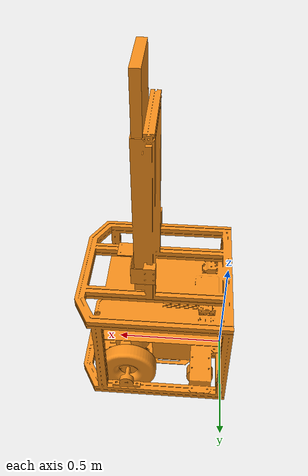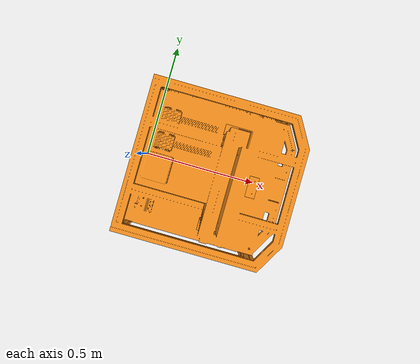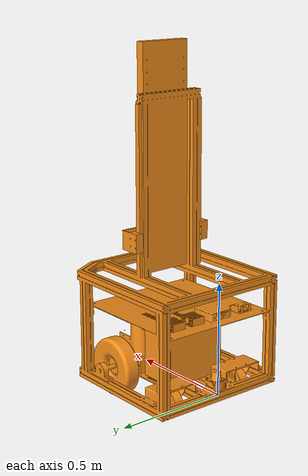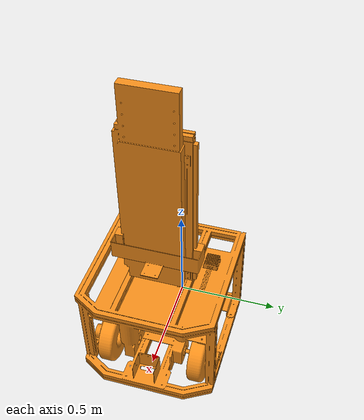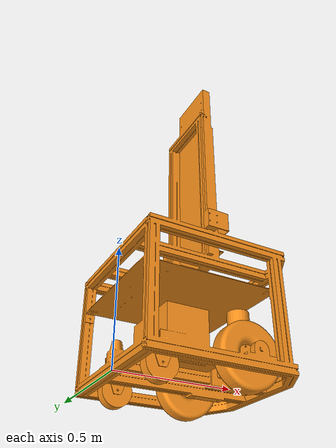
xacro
<robot name="OPTIMUS_robot_001" xmlns:xacro="http://www.ros.org/wiki/xacro">

    <xacro:property name="deg_to_rad" value="0.01745329251994329577"/>

    <link name="base_footprint"/>
    <joint name="base_footprint_joint" type="fixed">
        <parent link="base_footprint"/>
        <child link="base_link"/>
        <origin xyz="0.00 0.00 0" rpy="0.0 0.0 0.0"/>
    </joint>

    <!-- Base Link -->
    <link name="base_link">
        <collision>
            <origin xyz="0 0 0" rpy="0 0 0"/>
            <geometry>
                <mesh filename="package://infi_sim_v1/models/OPTIMUS_robot_001/meshes/base_link_collision_101.stl" scale="1 1 1"/>
            </geometry>
        </collision>
        <visual>
            <origin xyz="0 0 0" rpy="0 0 0"/>
            <geometry>
                <mesh filename="package://infi_sim_v1/models/OPTIMUS_robot_001/meshes/base_link.STL" scale="1 1 1"/>
            </geometry>
            <material name="orange"/>
        </visual>
        <inertial>
            <origin xyz="0.3 0 0.2" rpy="0 0 0"/>
            <mass value="80"/>
            <inertia
                    ixx="14.480" ixy="0" ixz="0.0"
                    iyy="14.672" iyz="0.0"
                    izz="3.480"/>
        </inertial>
    </link>
    <gazebo reference="base_link">
        <mu1>0.1</mu1>
        <mu2>0.1</mu2>
        <kp>500000.0</kp>
        <kd>10.0</kd>
        <minDepth>0.001</minDepth>
        <maxVel>0.1</maxVel>
        <fdir1>1 0 0</fdir1>
        <material>Gazebo/FlatBlack</material>
    </gazebo>

    <!-- Wheels -->
    <joint name="j_whFR" type="continuous">
        <parent link="base_link"/>
        <child link="whFR"/>
        <origin xyz="0.4315 -0.185 0.0533" rpy="0 0 0"/>
        <axis xyz="0 1 0"/>
    </joint>
    <link name="whFR">
        <collision>
            <origin xyz="0 -0.0375 0" rpy="1.5707963267948966 0 0"/>
            <geometry>
                <cylinder radius="0.13" length="0.075"/>

            </geometry>
        </collision>
        <visual>
            <origin xyz="0 0 0" rpy="0 0 -1.5707963267948966"/>
            <geometry>
                <mesh filename="package://infi_sim_v1/models/OPTIMUS_robot_001/meshes/wheel_front_left.STL" scale="1 1 1"/>
            </geometry>
            <material name="orange"/>
        </visual>

        <inertial>
            <origin xyz="0 0.0 0" rpy="0 0 0"/>
            <mass value="1.5"/>
            <inertia
                    ixx="0.007688273" ixy="0.0" ixz="0.0"
                    iyy="0.0140792" iyz="0.0"
                    izz="0.007688273"/>
        </inertial>
    </link>

    <joint name="j_whFL" type="continuous">
        <parent link="base_link"/>
        <child link="whFL"/>
        <origin xyz="0.4315 0.185 0.0533" rpy="0 0 0"/>
        <axis xyz="0 1 0"/>
    </joint>
    <link name="whFL">
        <collision>
            <origin xyz="0 0.0375 0" rpy=" 1.5707963267948966 0 0"/>
            <geometry>
                <cylinder radius="0.13" length="0.075"/>
                <mesh filename="package://infi_sim_v1/models/OPTIMUS_robot_001/meshes/wheel_front_left.STL" scale="1 1 1"/>
            </geometry>
        </collision>

        <visual>
            <origin xyz="0 0 0" rpy="0 0 1.5707963267948966"/>
            <geometry>
                <mesh filename="package://infi_sim_v1/models/OPTIMUS_robot_001/meshes/wheel_front_left.STL" scale="1 1 1"/>
            </geometry>
            <material name="orange"/>
        </visual>

        <inertial>
            <origin xyz="0 0.0 0" rpy="0 0 0"/>
            <mass value="1.5"/>
            <inertia
                    ixx="0.007688273" ixy="0.0" ixz="0.0"
                    iyy="0.0140792" iyz="0.0"
                    izz="0.007688273"/>
        </inertial>
    </link>

    <joint name="j_whRL" type="fixed">
        <parent link="base_link"/>
        <child link="whRL"/>
        <origin xyz="0.095 0.2075 -0.0173" rpy="0 0 0"/>
        <axis xyz="0 1 0"/>
    </joint>
    <link name="whRL">
        <collision>
            <origin xyz="0 0 0" rpy="1.5707963267948966 0 0"/>
            <geometry>
                <mesh filename="package://infi_sim_v1/models/OPTIMUS_robot_001/meshes/wheel_back_left.STL" scale="1 1 1"/>
            </geometry>
        </collision>
        <visual>
            <origin xyz="0 0 0" rpy="1.5707963267948966 0 0"/>
            <geometry>
                <mesh filename="package://infi_sim_v1/models/OPTIMUS_robot_001/meshes/wheel_back_left.STL" scale="1 1 1"/>
            </geometry>
            <material name="orange"/>
        </visual>

        <inertial>
            <origin xyz="0 -0.0215 0" rpy="0 0 0"/>
            <mass value="0.4"/>
            <inertia
                    ixx="0.0004538583" ixy="0.0" ixz="0.0"
                    iyy="0.00078445" iyz="0.0"
                    izz="0.0004538583"/>
        </inertial>
    </link>
    <gazebo reference="whRL">
        <mu1>0.0000001</mu1>
        <mu2>0.0000001</mu2>
        <kp>500000.0</kp>
        <kd>10.0</kd>
        <minDepth>0.001</minDepth>
        <maxVel>0.1</maxVel>
        <fdir1>1 0 0</fdir1>
        <material>Gazebo/Orange</material>
    </gazebo>

    <joint name="j_whRR" type="fixed">
        <parent link="base_link"/>
        <child link="whRR"/>
        <origin xyz="0.095 -0.2075 -0.0173" rpy="0 0 0"/>
        <axis xyz="0 1 0"/>
    </joint>
    <link name="whRR">
        <collision>
            <origin xyz="0 0 0" rpy="-1.5707963267948966 0 0"/>
            <geometry>
                <mesh filename="package://infi_sim_v1/models/OPTIMUS_robot_001/meshes/wheel_back_left.STL" scale="1 1 1"/>
            </geometry>
        </collision>
        <visual>
            <origin xyz="0 0 0" rpy="-1.5707963267948966 0 0"/>
            <geometry>
                <mesh filename="package://infi_sim_v1/models/OPTIMUS_robot_001/meshes/wheel_back_left.STL" scale="1 1 1"/>
            </geometry>
            <material name="orange"/>
        </visual>

        <inertial>
            <origin xyz="0 0.0215 0" rpy="0 0 0"/>
            <mass value="0.4"/>
            <inertia
                    ixx="0.0004538583" ixy="0.0" ixz="0.0"
                    iyy="0.00078445" iyz="0.0"
                    izz="0.0004538583"/>
        </inertial>
    </link>
    <gazebo reference="whRR">
        <mu1>0.0000001</mu1>
        <mu2>0.0000001</mu2>
        <kp>500000.0</kp>
        <kd>10.0</kd>
        <minDepth>0.001</minDepth>
        <maxVel>0.1</maxVel>
        <fdir1>1 0 0</fdir1>
        <material>Gazebo/Orange</material>
    </gazebo>

    <!-- Elevator -->
    <joint name="j_elev" type="fixed">
        <parent link="base_link"/>
        <child link="elevator"/>
        <origin xyz="0.4065 0 0.595" rpy="0 0 0"/>
        <axis xyz="0 0 1"/>
        <limit effort="30" velocity="1.0" lower="0" upper="0.7"/>

    </joint>
    <link name="elevator">
        <collision>
            <origin xyz="0 0 0" rpy="0 0 0"/>
            <geometry>
                <mesh filename="package://infi_sim_v1/models/OPTIMUS_robot_001/meshes/elevator_robotic_arm.STL" scale="1 1 1"/>
            </geometry>
        </collision>
        <visual>
            <origin xyz="0 0 0" rpy="0 0 0"/>
            <geometry>
                <mesh filename="package://infi_sim_v1/models/OPTIMUS_robot_001/meshes/elevator_robotic_arm.STL" scale="1 1 1"/>
            </geometry>
            <material name="orange"/>
        </visual>
        <inertial>
            <origin xyz="0 0 0" rpy="0 0 0"/>
            <mass value="1.5"/>
            <inertia
                    ixx="0.0302" ixy="0.0" ixz="0.0"
                    iyy="0.0027" iyz="0"
                    izz="0.0302"/>
        </inertial>
    </link>

    <!-- Sensors -->
    <joint name="j_ray_sensor_back" type="fixed">
        <parent link="base_link"/>
        <child link="ray_sensor_back"/>
        <origin xyz="0.0 0 -0.05" rpy="0 0 3.1415926"/>
        <axis xyz="0 0 1"/>
    </joint>
    <link name="ray_sensor_back">
        <inertial>
            <origin xyz="0 0 0" rpy="0 0 0"/>
            <mass value="0.0001"/>
            <inertia
                    ixx="1e-10" ixy="0.0" ixz="0.0"
                    iyy="1e-10" iyz="0"
                    izz="1e-10"/>
        </inertial>
    </link>
    <gazebo reference="ray_sensor_back">
        <sensor type="ray" name="ray_sensor_back">
            <always_on>true</always_on>
            <update_rate>100</update_rate>
            <pose>0 0 0 0 0 0</pose>
            <visualize>true</visualize>
            <ray>
                <scan>
                    <horizontal>
                        <samples>640</samples>
                        <resolution>1</resolution>
                        <min_angle>-1.6</min_angle>
                        <max_angle>1.6</max_angle>
                    </horizontal>
                </scan>
                <range>
                    <min>0.08</min>
                    <max>4.0</max>
                    <resolution>0.01</resolution>
                </range>
            </ray>
            <plugin name="gazebo_ros_laser_controller" filename="libgazebo_ros_laser.so">
                <gaussianNoise>0.00005</gaussianNoise>
                <alwaysOn>true</alwaysOn>
                <updateRate>50</updateRate>
                <topicName>/scan</topicName>
                <frameName>ray_sensor_back</frameName>
                <hokuyoMinIntensity>101</hokuyoMinIntensity>
            </plugin>
        </sensor>
    </gazebo>

    <joint name="j_ray_sensor_front" type="fixed">
        <parent link="base_link"/>
        <child link="ray_sensor_front"/>
        <origin xyz="0.5 0 0.5" rpy="0 0 0"/>
        <axis xyz="0 0 1"/>
    </joint>
    <link name="ray_sensor_front">
        <inertial>
            <origin xyz="0 0 0" rpy="0 0 0"/>
            <mass value="0.0001"/>
            <inertia
                    ixx="1e-10" ixy="0.0" ixz="0.0"
                    iyy="1e-10" iyz="0"
                    izz="1e-10"/>
        </inertial>
    </link>
    <gazebo reference="ray_sensor_front">
        <sensor type="ray" name="ray_sensor">
            <always_on>true</always_on>
            <update_rate>100</update_rate>
            <pose>1 0 0.1 0 0 0</pose>
            <visualize>true</visualize>
            <ray>
                <scan>
                    <horizontal>
                        <samples>640</samples>
                        <resolution>1</resolution>
                        <min_angle>-2</min_angle>
                        <max_angle>2</max_angle>
                    </horizontal>
                </scan>
                <range>
                    <min>0.08</min>
                    <max>20.0</max>
                    <resolution>0.01</resolution>
                </range>
            </ray>
            <plugin name="gazebo_ros_laser_controller" filename="libgazebo_ros_laser.so">
                <gaussianNoise>0.00005</gaussianNoise>
                <alwaysOn>true</alwaysOn>
                <updateRate>50</updateRate>
                <topicName>/scan</topicName>
                <frameName>ray_sensor_front</frameName>
                <hokuyoMinIntensity>101</hokuyoMinIntensity>
            </plugin>
        </sensor>
    </gazebo>

    <joint name="j_imu_link" type="fixed">
        <parent link="base_link"/>
        <child link="imu_link"/>
        <origin xyz="0.3 0 0" rpy="0 0 0"/>
        <axis xyz="0 0 1"/>
    </joint>
    <link name="imu_link">
        <inertial>
            <origin xyz="0 0 0" rpy="0 0 0"/>
            <mass value="0.0001"/>
            <inertia
                    ixx="1e-10" ixy="0.0" ixz="0.0"
                    iyy="1e-10" iyz="0"
                    izz="1e-10"/>
        </inertial>
    </link>

    <gazebo reference="imu_link">
        <sensor type="imu" name="imu">
            <always_on>true</always_on>
            <visualize>true</visualize>
        </sensor>
        <material>Gazebo/Grey</material>
    </gazebo>

    <gazebo>
        <plugin name="imu_plugin" filename="libgazebo_ros_imu.so">
            <alwaysOn>true</alwaysOn>
            <bodyName>imu_link</bodyName>
            <frameName>imu_link</frameName>
            <topicName>imu</topicName>
            <serviceName>imu_service</serviceName>
            <gaussianNoise>0.0</gaussianNoise>
            <updateRate>200</updateRate>
            <imu>
                <noise>
                    <type>gaussian</type>
                    <rate>
                        <mean>0.0</mean>
                        <stddev>2e-7</stddev>
                        <bias_mean>0.0</bias_mean>
                        <bias_stddev>0.0</bias_stddev>
                    </rate>
                    <accel>
                        <mean>0.0</mean>
                        <stddev>1.7e-7</stddev>
                        <bias_mean>0.0</bias_mean>
                        <bias_stddev>0.0</bias_stddev>
                    </accel>
                </noise>
            </imu>
        </plugin>
    </gazebo>

    <gazebo>
        <plugin name="optimus_diff_drive" filename="libgazebo_ros_diff_drive.so">
            <commandTopic>cmd_vel</commandTopic>
            <odometryTopic>odom</odometryTopic>
            <odometryFrame>odom</odometryFrame>
            <publishOdomTF>true</publishOdomTF>
            <robotBaseFrame>base_footprint</robotBaseFrame>
            <publishWheelTF>false</publishWheelTF>
            <publishTf>true</publishTf>
            <publishWheelJointState>true</publishWheelJointState>
            <legacyMode>false</legacyMode>
            <updateRate>30</updateRate>
            <leftJoint>j_whFL</leftJoint>
            <rightJoint>j_whFR</rightJoint>
            <wheelSeparation>0.445</wheelSeparation>
            <wheelDiameter>0.26</wheelDiameter>
            <wheelAcceleration>1</wheelAcceleration>
            <wheelTorque>10</wheelTorque>
            <rosDebugLevel>na</rosDebugLevel>
        </plugin>
    </gazebo>
</robot>
